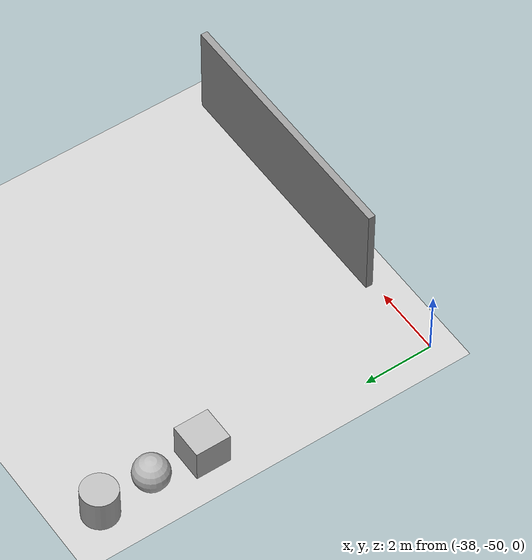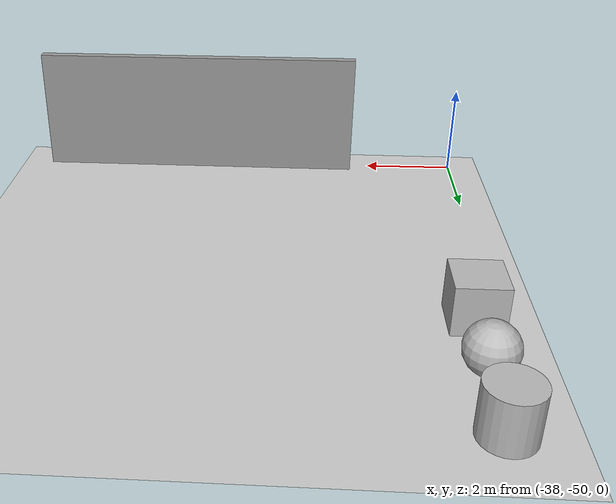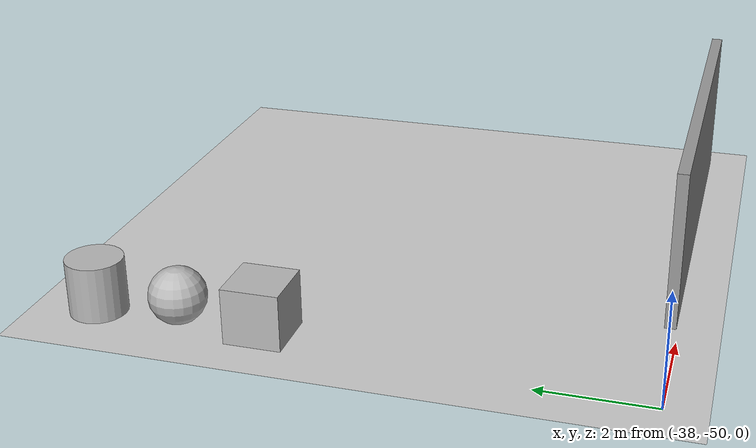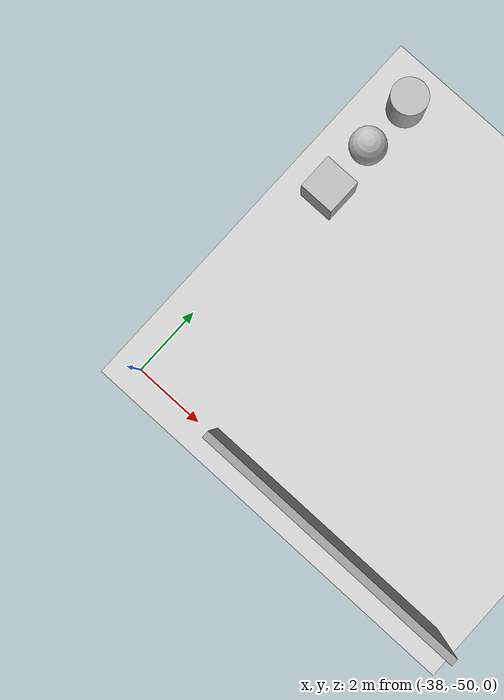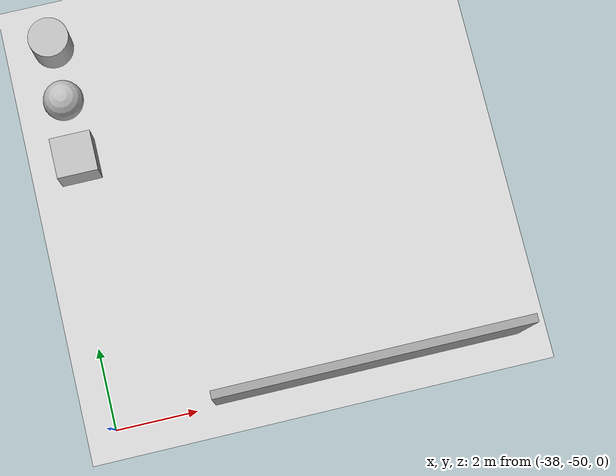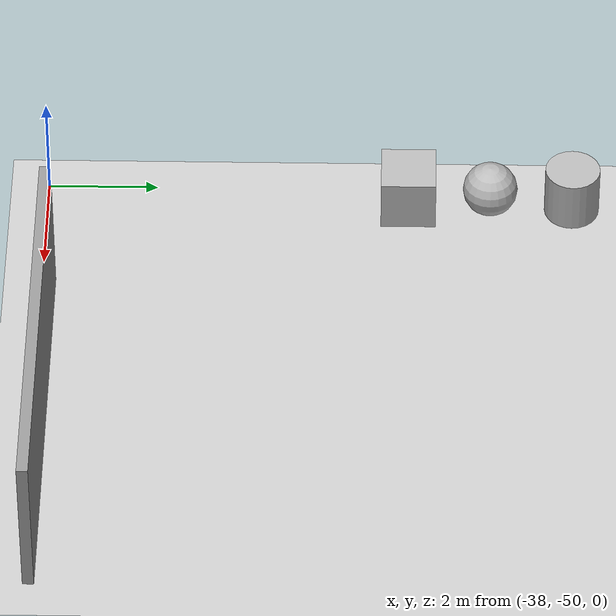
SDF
<sdf version="1.7">
 <world name="default">
  <model name="ground_plane">
   <static>1</static>
   <link name="link">
    <collision name="collision">
     <geometry><plane><normal>0 0 1</normal><size>100 100</size></plane></geometry>
     <surface><friction><ode><mu>100</mu><mu2>50</mu2></ode></friction></surface>
    </collision>
    <visual name="visual">
     <cast_shadows>0</cast_shadows>
     <geometry><plane><normal>0 0 1</normal><size>100 100</size></plane></geometry>
     <material>
      <script><uri>file://media/materials/scripts/gazebo.material</uri><name>Gazebo/Grey</name></script>
     </material>
    </visual>
   </link>
  </model>
  <model name="grey_wall">
   <static>1</static>
   <link name="link">
    <pose>0 0 1.4 0 -0 0</pose>
    <collision name="collision"><geometry><box><size>7.5 0.2 2.8</size></box></geometry></collision>
    <visual name="visual">
     <cast_shadows>0</cast_shadows>
     <geometry><box><size>7.5 0.2 2.8</size></box></geometry>
     <material>
      <script>
       <uri>model://grey_wall/materials/scripts</uri>
       <uri>model://grey_wall/materials/textures</uri>
       <name>vrc/grey_wall</name>
      </script>
     </material>
    </visual>
   </link>
   <pose>-31.7918 -49.8637 0 0 -0 0</pose>
  </model>
  <model name="textured_shapes_0">
   <pose>-37.5186 -41.8813 0.509991 -3e-06 -2e-06 0</pose>
   <link name="box">
    <pose>0 -1.5 0 0 -0 0</pose>
    <collision name="collision"><geometry><box><size>1 1 1</size></box></geometry></collision>
    <visual name="visual">
     <geometry><box><size>1 1 1</size></box></geometry>
     <material>
      <script>
       <uri>model://textured_shapes/materials/scripts</uri>
       <uri>model://textured_shapes/materials/textures</uri>
       <name>TexturedShape/Squares</name>
      </script>
     </material>
    </visual>
    <inertial>
     <inertia><ixx>1</ixx><ixy>0</ixy><ixz>0</ixz><iyy>1</iyy><iyz>0</iyz><izz>1</izz></inertia>
     <mass>1</mass>
    </inertial>
   </link>
   <link name="sphere">
    <collision name="collision"><geometry><sphere><radius>0.5</radius></sphere></geometry></collision>
    <visual name="visual">
     <geometry><sphere><radius>0.5</radius></sphere></geometry>
     <material>
      <script>
       <uri>model://textured_shapes/materials/scripts</uri>
       <uri>model://textured_shapes/materials/textures</uri>
       <name>TexturedShape/Squares</name>
      </script>
     </material>
    </visual>
    <inertial>
     <inertia><ixx>1</ixx><ixy>0</ixy><ixz>0</ixz><iyy>1</iyy><iyz>0</iyz><izz>1</izz></inertia>
     <mass>1</mass>
    </inertial>
   </link>
   <link name="cylinder">
    <pose>0 1.5 0 0 -0 0</pose>
    <collision name="collision">
     <geometry><cylinder><radius>0.5</radius><length>1</length></cylinder></geometry>
    </collision>
    <visual name="visual">
     <geometry><cylinder><radius>0.5</radius><length>1</length></cylinder></geometry>
     <material>
      <script>
       <uri>model://textured_shapes/materials/scripts</uri>
       <uri>model://textured_shapes/materials/textures</uri>
       <name>TexturedShape/Squares</name>
      </script>
     </material>
    </visual>
    <inertial>
     <inertia><ixx>1</ixx><ixy>0</ixy><ixz>0</ixz><iyy>1</iyy><iyz>0</iyz><izz>1</izz></inertia>
     <mass>1</mass>
    </inertial>
   </link>
  </model>
 </world>
</sdf>
